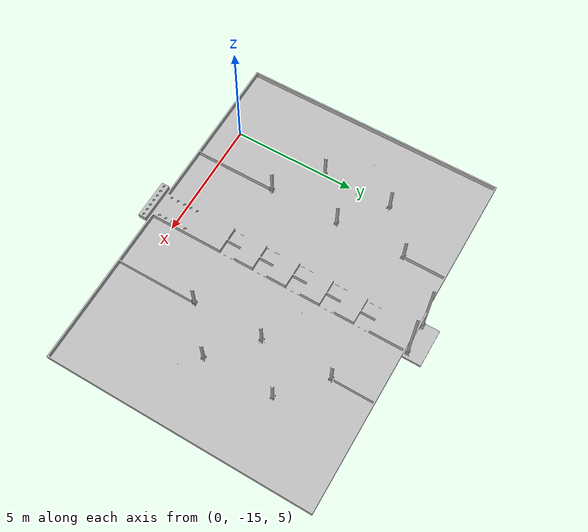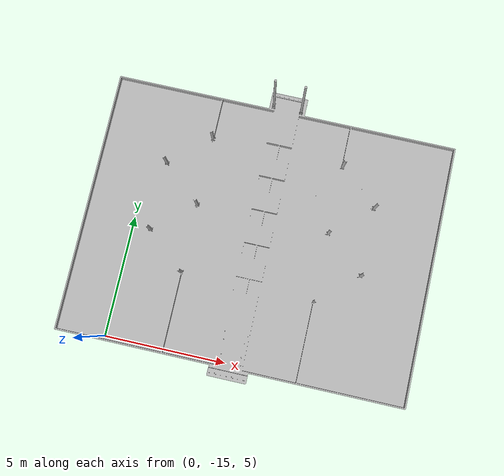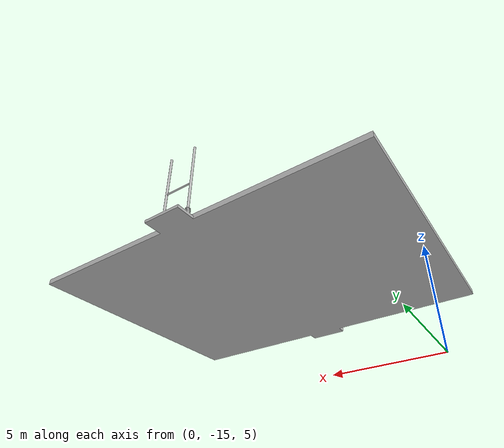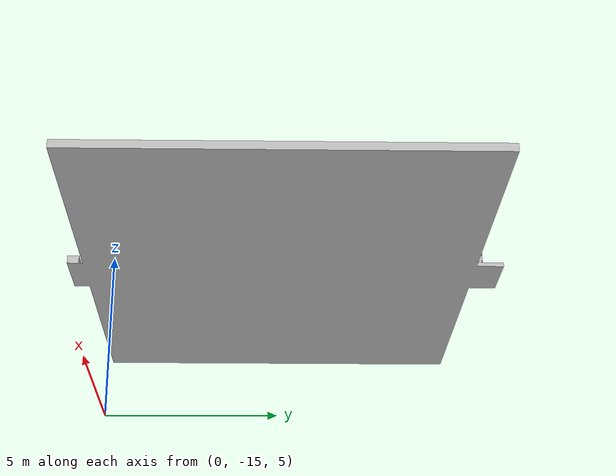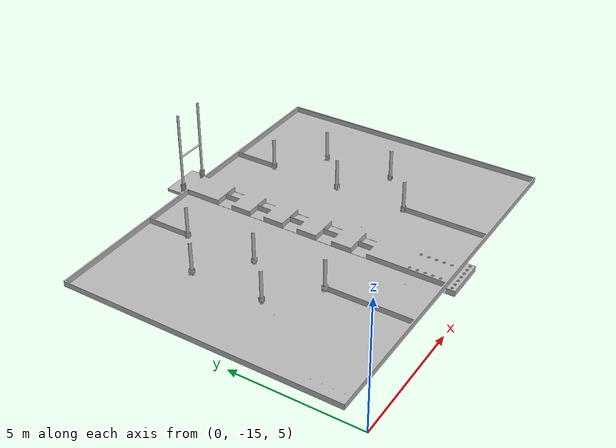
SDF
<?xml version="1.0" encoding="utf-8"?>
<sdf version='1.5'>
    <!-- Draw Circle -->
    <model name='gamefield'>
      <static>1</static>
      <link name='symbol'>
        <collision name='one_one'>
        <pose>0 0 0 0 0 0</pose>
          <geometry>
	    <mesh>
	      <uri>model://gamefield20/meshes/base_link.STL</uri>
              <scale>1.0 1.0 1.0</scale>
	    </mesh>
          </geometry>
          <max_contacts>10</max_contacts>
          <surface>
            <bounce/>
            <friction>
              <ode/>
            </friction>
            <contact>
              <ode/>
            </contact>
          </surface>
        </collision>

        <visual name='one_one'>
          <pose>0 0 0 0 0 0</pose>
          <geometry>
	    <mesh>
	      <uri>model://gamefield20/meshes/base_link.STL</uri>
              <scale>1.0 1.0 1.0</scale>
	    </mesh>
          </geometry>
          <material>
            <script>

            </script>
          </material>
        </visual>
    </link>
  </model>
</sdf>
